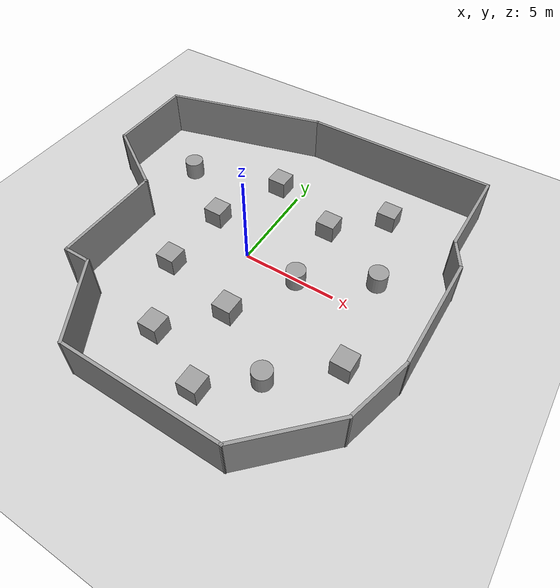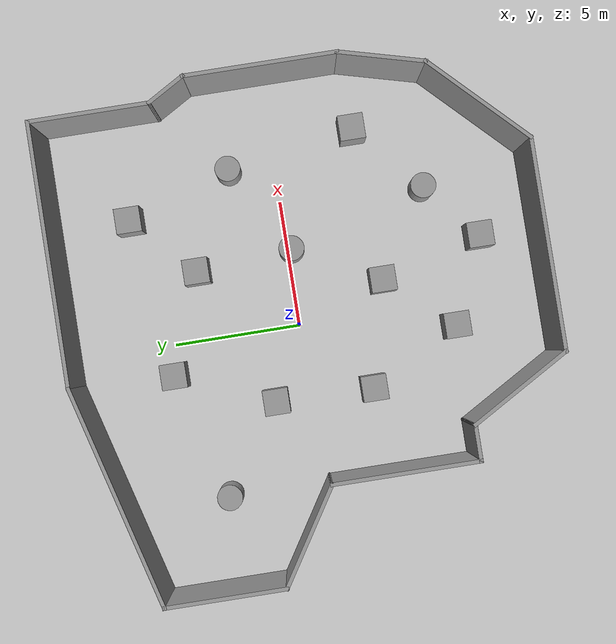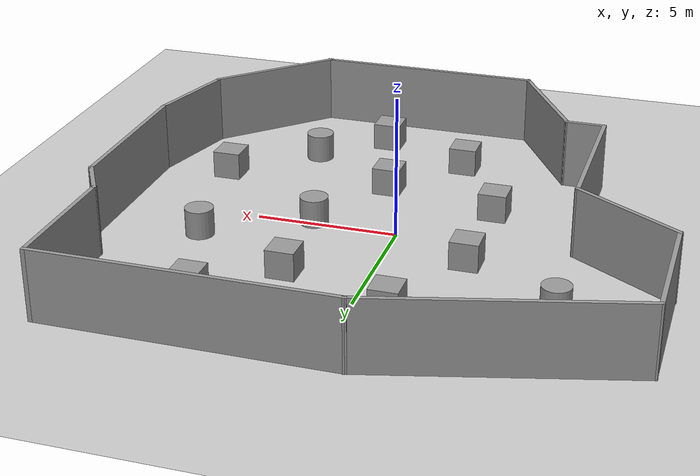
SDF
<sdf version="1.7">
 <world name="default">
  <light name="sun" type="directional">
   <pose>0 0 10 0 -0 0</pose>
   <diffuse>0.8 0.8 0.8 1</diffuse>
   <specular>0.2 0.2 0.2 1</specular>
   <attenuation>
    <range>1000</range>
    <constant>0.9</constant>
    <linear>0.01</linear>
    <quadratic>0.001</quadratic>
   </attenuation>
   <direction>-0.5 0.1 -0.9</direction>
   <spot><inner_angle>0</inner_angle><outer_angle>0</outer_angle><falloff>0</falloff></spot>
  </light>
  <model name="ground_plane">
   <static>1</static>
   <link name="link">
    <collision name="collision">
     <geometry><plane><normal>0 0 1</normal><size>100 100</size></plane></geometry>
     <surface>
      <contact><collide_bitmask>65535</collide_bitmask></contact>
      <friction><ode><mu>100</mu><mu2>50</mu2></ode></friction>
     </surface>
    </collision>
    <visual name="visual">
     <cast_shadows>0</cast_shadows>
     <geometry><plane><normal>0 0 1</normal><size>100 100</size></plane></geometry>
     <material>
      <script><uri>file://media/materials/scripts/gazebo.material</uri><name>Gazebo/Grey</name></script>
     </material>
    </visual>
   </link>
  </model>
  <gravity>0 0 -9.8</gravity>
  <magnetic_field>6e-06 2.3e-05 -4.2e-05</magnetic_field>
  <atmosphere type="adiabatic"/>
  <physics type="ode">
   <max_step_size>0.001</max_step_size>
   <real_time_factor>1</real_time_factor>
   <real_time_update_rate>1000</real_time_update_rate>
  </physics>
  <scene><ambient>0.4 0.4 0.4 1</ambient><background>0.7 0.7 0.7 1</background><shadows>1</shadows></scene>
  <spherical_coordinates>
   <surface_model>EARTH_WGS84</surface_model>
   <latitude_deg>0</latitude_deg>
   <longitude_deg>0</longitude_deg>
   <elevation>0</elevation>
   <heading_deg>0</heading_deg>
  </spherical_coordinates>
  <model name="MObstacles">
   <pose>0.136374 -0.390255 0 0 -0 0</pose>
   <link name="Wall_0">
    <collision name="Wall_0_Collision">
     <geometry><box><size>5.75 0.15 2.5</size></box></geometry>
     <pose>0 0 1.25 0 -0 0</pose>
    </collision>
    <visual name="Wall_0_Visual">
     <pose>0 0 1.25 0 -0 0</pose>
     <geometry><box><size>5.75 0.15 2.5</size></box></geometry>
     <material>
      <script><uri>file://media/materials/scripts/gazebo.material</uri><name>Gazebo/Grey</name></script>
      <ambient>1 1 1 1</ambient>
     </material>
     <meta><layer>0</layer></meta>
    </visual>
    <pose>-6.19675 -2.67616 0 0 -0 -1.5708</pose>
   </link>
   <link name="Wall_1">
    <collision name="Wall_1_Collision">
     <geometry><box><size>1.5 0.15 2.5</size></box></geometry>
     <pose>0 0 1.25 0 -0 0</pose>
    </collision>
    <visual name="Wall_1_Visual">
     <pose>0 0 1.25 0 -0 0</pose>
     <geometry><box><size>1.5 0.15 2.5</size></box></geometry>
     <material>
      <script><uri>file://media/materials/scripts/gazebo.material</uri><name>Gazebo/Grey</name></script>
      <ambient>1 1 1 1</ambient>
     </material>
     <meta><layer>0</layer></meta>
    </visual>
    <pose>-5.52175 -5.47616 0 0 -0 0</pose>
   </link>
   <link name="Wall_10">
    <collision name="Wall_10_Collision">
     <geometry><box><size>10.25 0.15 2.5</size></box></geometry>
     <pose>0 0 1.25 0 -0 0</pose>
    </collision>
    <visual name="Wall_10_Visual">
     <pose>0 0 1.25 0 -0 0</pose>
     <geometry><box><size>10.25 0.15 2.5</size></box></geometry>
     <material>
      <script><uri>file://media/materials/scripts/gazebo.material</uri><name>Gazebo/Grey</name></script>
      <ambient>1 1 1 1</ambient>
     </material>
     <meta><layer>0</layer></meta>
    </visual>
    <pose>3.87476 9.25759 0 0 -0 3.14159</pose>
   </link>
   <link name="Wall_11">
    <collision name="Wall_11_Collision">
     <geometry><box><size>9 0.15 2.5</size></box></geometry>
     <pose>0 0 1.25 0 -0 0</pose>
    </collision>
    <visual name="Wall_11_Visual">
     <pose>0 0 1.25 0 -0 0</pose>
     <geometry><box><size>9 0.15 2.5</size></box></geometry>
     <material>
      <script><uri>file://media/materials/scripts/gazebo.material</uri><name>Gazebo/Grey</name></script>
      <ambient>1 1 1 1</ambient>
     </material>
     <meta><layer>0</layer></meta>
    </visual>
    <pose>-5.44946 8.11231 0 0 -0 -2.87979</pose>
   </link>
   <link name="Wall_12">
    <collision name="Wall_12_Collision">
     <geometry><box><size>4.75 0.15 2.5</size></box></geometry>
     <pose>0 0 1.25 0 -0 0</pose>
    </collision>
    <visual name="Wall_12_Visual">
     <pose>0 0 1.25 0 -0 0</pose>
     <geometry><box><size>4.75 0.15 2.5</size></box></geometry>
     <material>
      <script><uri>file://media/materials/scripts/gazebo.material</uri><name>Gazebo/Grey</name></script>
      <ambient>1 1 1 1</ambient>
     </material>
     <meta><layer>0</layer></meta>
    </visual>
    <pose>-9.72368 4.66704 0 0 -0 -1.5708</pose>
   </link>
   <link name="Wall_13">
    <collision name="Wall_13_Collision">
     <geometry><box><size>4.32986 0.15 2.5</size></box></geometry>
     <pose>0 0 1.25 0 -0 0</pose>
    </collision>
    <visual name="Wall_13_Visual">
     <pose>0 0 1.25 0 -0 0</pose>
     <geometry><box><size>4.32986 0.15 2.5</size></box></geometry>
     <material>
      <script><uri>file://media/materials/scripts/gazebo.material</uri><name>Gazebo/Grey</name></script>
      <ambient>1 1 1 1</ambient>
     </material>
     <meta><layer>0</layer></meta>
    </visual>
    <pose>-7.96021 1.24544 0 0 -0 -0.566485</pose>
   </link>
   <link name="Wall_3">
    <collision name="Wall_3_Collision">
     <geometry><box><size>4.5 0.15 2.5</size></box></geometry>
     <pose>0 0 1.25 0 -0 0</pose>
    </collision>
    <visual name="Wall_3_Visual">
     <pose>0 0 1.25 0 -0 0</pose>
     <geometry><box><size>4.5 0.15 2.5</size></box></geometry>
     <material>
      <script><uri>file://media/materials/scripts/gazebo.material</uri><name>Gazebo/Grey</name></script>
      <ambient>1 1 1 1</ambient>
     </material>
     <meta><layer>0</layer></meta>
    </visual>
    <pose>-3.75925 -7.35977 0 0 -0 -1.0472</pose>
   </link>
   <link name="Wall_4">
    <collision name="Wall_4_Collision">
     <geometry><box><size>8.25 0.15 2.5</size></box></geometry>
     <pose>0 0 1.25 0 -0 0</pose>
    </collision>
    <visual name="Wall_4_Visual">
     <pose>0 0 1.25 0 -0 0</pose>
     <geometry><box><size>8.25 0.15 2.5</size></box></geometry>
     <material>
      <script><uri>file://media/materials/scripts/gazebo.material</uri><name>Gazebo/Grey</name></script>
      <ambient>1 1 1 1</ambient>
     </material>
     <meta><layer>0</layer></meta>
    </visual>
    <pose>1.37825 -9.24338 0 0 -0 0</pose>
   </link>
   <link name="Wall_5">
    <collision name="Wall_5_Collision">
     <geometry><box><size>5 0.15 2.5</size></box></geometry>
     <pose>0 0 1.25 0 -0 0</pose>
    </collision>
    <visual name="Wall_5_Visual">
     <pose>0 0 1.25 0 -0 0</pose>
     <geometry><box><size>5 0.15 2.5</size></box></geometry>
     <material>
      <script><uri>file://media/materials/scripts/gazebo.material</uri><name>Gazebo/Grey</name></script>
      <ambient>1 1 1 1</ambient>
     </material>
     <meta><layer>0</layer></meta>
    </visual>
    <pose>7.14299 -7.52864 0 0 -0 0.785398</pose>
   </link>
   <link name="Wall_6">
    <collision name="Wall_6_Collision">
     <geometry><box><size>3.5 0.15 2.5</size></box></geometry>
     <pose>0 0 1.25 0 -0 0</pose>
    </collision>
    <visual name="Wall_6_Visual">
     <pose>0 0 1.25 0 -0 0</pose>
     <geometry><box><size>3.5 0.15 2.5</size></box></geometry>
     <material>
      <script><uri>file://media/materials/scripts/gazebo.material</uri><name>Gazebo/Grey</name></script>
      <ambient>1 1 1 1</ambient>
     </material>
     <meta><layer>0</layer></meta>
    </visual>
    <pose>9.29124 -4.19598 0 0 -0 1.309</pose>
   </link>
   <link name="Wall_7">
    <collision name="Wall_7_Collision">
     <geometry><box><size>6 0.15 2.5</size></box></geometry>
     <pose>0 0 1.25 0 -0 0</pose>
    </collision>
    <visual name="Wall_7_Visual">
     <pose>0 0 1.25 0 -0 0</pose>
     <geometry><box><size>6 0.15 2.5</size></box></geometry>
     <material>
      <script><uri>file://media/materials/scripts/gazebo.material</uri><name>Gazebo/Grey</name></script>
      <ambient>1 1 1 1</ambient>
     </material>
     <meta><layer>0</layer></meta>
    </visual>
    <pose>9.72476 0.346945 0 0 -0 1.5708</pose>
   </link>
   <link name="Wall_8">
    <collision name="Wall_8_Collision">
     <geometry><box><size>1.75 0.15 2.5</size></box></geometry>
     <pose>0 0 1.25 0 -0 0</pose>
    </collision>
    <visual name="Wall_8_Visual">
     <pose>0 0 1.25 0 -0 0</pose>
     <geometry><box><size>1.75 0.15 2.5</size></box></geometry>
     <material>
      <script><uri>file://media/materials/scripts/gazebo.material</uri><name>Gazebo/Grey</name></script>
      <ambient>1 1 1 1</ambient>
     </material>
     <meta><layer>0</layer></meta>
    </visual>
    <pose>9.32476 3.96476 0 0 -0 2.0944</pose>
   </link>
   <link name="Wall_9">
    <collision name="Wall_9_Collision">
     <geometry><box><size>4.75 0.15 2.5</size></box></geometry>
     <pose>0 0 1.25 0 -0 0</pose>
    </collision>
    <visual name="Wall_9_Visual">
     <pose>0 0 1.25 0 -0 0</pose>
     <geometry><box><size>4.75 0.15 2.5</size></box></geometry>
     <material>
      <script><uri>file://media/materials/scripts/gazebo.material</uri><name>Gazebo/Grey</name></script>
      <ambient>1 1 1 1</ambient>
     </material>
     <meta><layer>0</layer></meta>
    </visual>
    <pose>8.92476 6.95758 0 0 -0 1.5708</pose>
   </link>
   <static>1</static>
   <static>true</static>
  </model>
  <model name="unit_box">
   <pose>2.71563 3.66722 0.499995 1e-05 -0 0</pose>
   <link name="link">
    <inertial>
     <mass>1</mass>
     <inertia>
      <ixx>0.166667</ixx>
      <ixy>0</ixy>
      <ixz>0</ixz>
      <iyy>0.166667</iyy>
      <iyz>0</iyz>
      <izz>0.166667</izz>
     </inertia>
    </inertial>
    <collision name="collision"><geometry><box><size>1 1 1</size></box></geometry></collision>
    <visual name="visual">
     <geometry><box><size>1 1 1</size></box></geometry>
     <material>
      <script><name>Gazebo/Grey</name><uri>file://media/materials/scripts/gazebo.material</uri></script>
     </material>
    </visual>
   </link>
   <static>true</static>
  </model>
  <model name="unit_cylinder">
   <pose>3.01461 -0.156316 0.499993 -3e-06 -4e-06 -0</pose>
   <link name="link">
    <inertial>
     <mass>1</mass>
     <inertia><ixx>0.145833</ixx><ixy>0</ixy><ixz>0</ixz><iyy>0.145833</iyy><iyz>0</iyz><izz>0.125</izz></inertia>
    </inertial>
    <collision name="collision">
     <geometry><cylinder><radius>0.5</radius><length>1</length></cylinder></geometry>
    </collision>
    <visual name="visual">
     <geometry><cylinder><radius>0.5</radius><length>1</length></cylinder></geometry>
     <material>
      <script><name>Gazebo/Grey</name><uri>file://media/materials/scripts/gazebo.material</uri></script>
     </material>
    </visual>
   </link>
   <static>true</static>
  </model>
  <model name="unit_box_0">
   <pose>1.2795 -3.49733 0.499995 1e-05 -0 0</pose>
   <link name="link">
    <inertial>
     <mass>1</mass>
     <inertia>
      <ixx>0.166667</ixx>
      <ixy>0</ixy>
      <ixz>0</ixz>
      <iyy>0.166667</iyy>
      <iyz>0</iyz>
      <izz>0.166667</izz>
     </inertia>
    </inertial>
    <collision name="collision"><geometry><box><size>1 1 1</size></box></geometry></collision>
    <visual name="visual">
     <geometry><box><size>1 1 1</size></box></geometry>
     <material>
      <script><name>Gazebo/Grey</name><uri>file://media/materials/scripts/gazebo.material</uri></script>
     </material>
    </visual>
   </link>
   <static>true</static>
  </model>
  <model name="unit_box_1">
   <pose>5.09717 5.98362 0.499995 -1e-05 -0 -0</pose>
   <link name="link">
    <inertial>
     <mass>1</mass>
     <inertia>
      <ixx>0.166667</ixx>
      <ixy>0</ixy>
      <ixz>0</ixz>
      <iyy>0.166667</iyy>
      <iyz>0</iyz>
      <izz>0.166667</izz>
     </inertia>
    </inertial>
    <collision name="collision"><geometry><box><size>1 1 1</size></box></geometry></collision>
    <visual name="visual">
     <geometry><box><size>1 1 1</size></box></geometry>
     <material>
      <script><name>Gazebo/Grey</name><uri>file://media/materials/scripts/gazebo.material</uri></script>
     </material>
    </visual>
   </link>
   <static>true</static>
  </model>
  <model name="unit_box_2">
   <pose>-2.86524 -2.50968 0.499995 1e-05 -0 0</pose>
   <link name="link">
    <inertial>
     <mass>1</mass>
     <inertia>
      <ixx>0.166667</ixx>
      <ixy>0</ixy>
      <ixz>0</ixz>
      <iyy>0.166667</iyy>
      <iyz>0</iyz>
      <izz>0.166667</izz>
     </inertia>
    </inertial>
    <collision name="collision"><geometry><box><size>1 1 1</size></box></geometry></collision>
    <visual name="visual">
     <geometry><box><size>1 1 1</size></box></geometry>
     <material>
      <script><name>Gazebo/Grey</name><uri>file://media/materials/scripts/gazebo.material</uri></script>
     </material>
    </visual>
   </link>
   <static>true</static>
  </model>
  <model name="unit_box_3">
   <pose>-1.19398 5.15742 0.499995 -1e-05 -0 -0</pose>
   <link name="link">
    <inertial>
     <mass>1</mass>
     <inertia>
      <ixx>0.166667</ixx>
      <ixy>0</ixy>
      <ixz>0</ixz>
      <iyy>0.166667</iyy>
      <iyz>0</iyz>
      <izz>0.166667</izz>
     </inertia>
    </inertial>
    <collision name="collision"><geometry><box><size>1 1 1</size></box></geometry></collision>
    <visual name="visual">
     <geometry><box><size>1 1 1</size></box></geometry>
     <material>
      <script><name>Gazebo/Grey</name><uri>file://media/materials/scripts/gazebo.material</uri></script>
     </material>
    </visual>
   </link>
   <static>true</static>
  </model>
  <model name="unit_cylinder_0">
   <pose>-6.18407 3.70296 0.499998 3e-06 -2e-06 0</pose>
   <link name="link">
    <inertial>
     <mass>1</mass>
     <inertia><ixx>0.145833</ixx><ixy>0</ixy><ixz>0</ixz><iyy>0.145833</iyy><iyz>0</iyz><izz>0.125</izz></inertia>
    </inertial>
    <collision name="collision">
     <geometry><cylinder><radius>0.5</radius><length>1</length></cylinder></geometry>
    </collision>
    <visual name="visual">
     <geometry><cylinder><radius>0.5</radius><length>1</length></cylinder></geometry>
     <material>
      <script><name>Gazebo/Grey</name><uri>file://media/materials/scripts/gazebo.material</uri></script>
     </material>
    </visual>
   </link>
   <static>true</static>
  </model>
  <model name="unit_box_4">
   <pose>-2.79975 1.35396 0.499995 -1e-05 -0 -0</pose>
   <link name="link">
    <inertial>
     <mass>1</mass>
     <inertia>
      <ixx>0.166667</ixx>
      <ixy>0</ixy>
      <ixz>0</ixz>
      <iyy>0.166667</iyy>
      <iyz>0</iyz>
      <izz>0.166667</izz>
     </inertia>
    </inertial>
    <collision name="collision"><geometry><box><size>1 1 1</size></box></geometry></collision>
    <visual name="visual">
     <geometry><box><size>1 1 1</size></box></geometry>
     <material>
      <script><name>Gazebo/Grey</name><uri>file://media/materials/scripts/gazebo.material</uri></script>
     </material>
    </visual>
   </link>
   <static>true</static>
  </model>
  <model name="unit_cylinder_1">
   <pose>4.64347 -5.62151 0.499998 3e-06 -3e-06 0</pose>
   <link name="link">
    <inertial>
     <mass>1</mass>
     <inertia><ixx>0.145833</ixx><ixy>0</ixy><ixz>0</ixz><iyy>0.145833</iyy><iyz>0</iyz><izz>0.125</izz></inertia>
    </inertial>
    <collision name="collision">
     <geometry><cylinder><radius>0.5</radius><length>1</length></cylinder></geometry>
    </collision>
    <visual name="visual">
     <geometry><cylinder><radius>0.5</radius><length>1</length></cylinder></geometry>
     <material>
      <script><name>Gazebo/Grey</name><uri>file://media/materials/scripts/gazebo.material</uri></script>
     </material>
    </visual>
   </link>
   <static>true</static>
  </model>
  <model name="unit_box_5">
   <pose>-0.934851 -6.08944 0.499995 0 1e-05 0</pose>
   <link name="link">
    <inertial>
     <mass>1</mass>
     <inertia>
      <ixx>0.166667</ixx>
      <ixy>0</ixy>
      <ixz>0</ixz>
      <iyy>0.166667</iyy>
      <iyz>0</iyz>
      <izz>0.166667</izz>
     </inertia>
    </inertial>
    <collision name="collision"><geometry><box><size>1 1 1</size></box></geometry></collision>
    <visual name="visual">
     <geometry><box><size>1 1 1</size></box></geometry>
     <material>
      <script><name>Gazebo/Grey</name><uri>file://media/materials/scripts/gazebo.material</uri></script>
     </material>
    </visual>
   </link>
   <static>true</static>
  </model>
  <model name="unit_box_6">
   <pose>2.42022 -7.52843 0.499995 -1e-05 -0 -0</pose>
   <link name="link">
    <inertial>
     <mass>1</mass>
     <inertia>
      <ixx>0.166667</ixx>
      <ixy>0</ixy>
      <ixz>0</ixz>
      <iyy>0.166667</iyy>
      <iyz>0</iyz>
      <izz>0.166667</izz>
     </inertia>
    </inertial>
    <collision name="collision"><geometry><box><size>1 1 1</size></box></geometry></collision>
    <visual name="visual">
     <geometry><box><size>1 1 1</size></box></geometry>
     <material>
      <script><name>Gazebo/Grey</name><uri>file://media/materials/scripts/gazebo.material</uri></script>
     </material>
    </visual>
   </link>
   <static>true</static>
  </model>
  <model name="unit_box_7">
   <pose>7.34032 -3.21292 0.499995 0 1e-05 0</pose>
   <link name="link">
    <inertial>
     <mass>1</mass>
     <inertia>
      <ixx>0.166667</ixx>
      <ixy>0</ixy>
      <ixz>0</ixz>
      <iyy>0.166667</iyy>
      <iyz>0</iyz>
      <izz>0.166667</izz>
     </inertia>
    </inertial>
    <collision name="collision"><geometry><box><size>1 1 1</size></box></geometry></collision>
    <visual name="visual">
     <geometry><box><size>1 1 1</size></box></geometry>
     <material>
      <script><name>Gazebo/Grey</name><uri>file://media/materials/scripts/gazebo.material</uri></script>
     </material>
    </visual>
   </link>
   <static>true</static>
  </model>
  <model name="unit_cylinder_2">
   <pose>6.47267 1.82789 0.499992 0 -0 0</pose>
   <link name="link">
    <inertial>
     <mass>1</mass>
     <inertia><ixx>0.145833</ixx><ixy>0</ixy><ixz>0</ixz><iyy>0.145833</iyy><iyz>0</iyz><izz>0.125</izz></inertia>
    </inertial>
    <collision name="collision">
     <geometry><cylinder><radius>0.5</radius><length>1</length></cylinder></geometry>
    </collision>
    <visual name="visual">
     <geometry><cylinder><radius>0.5</radius><length>1</length></cylinder></geometry>
     <material>
      <script><name>Gazebo/Grey</name><uri>file://media/materials/scripts/gazebo.material</uri></script>
     </material>
    </visual>
   </link>
   <static>true</static>
  </model>
 </world>
</sdf>
